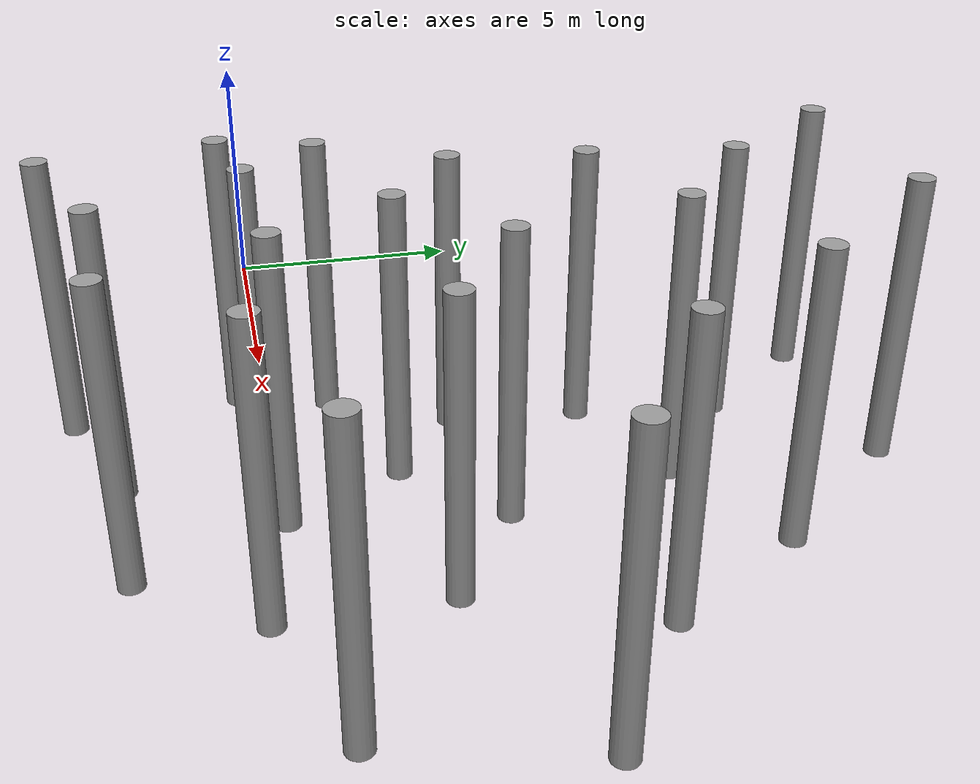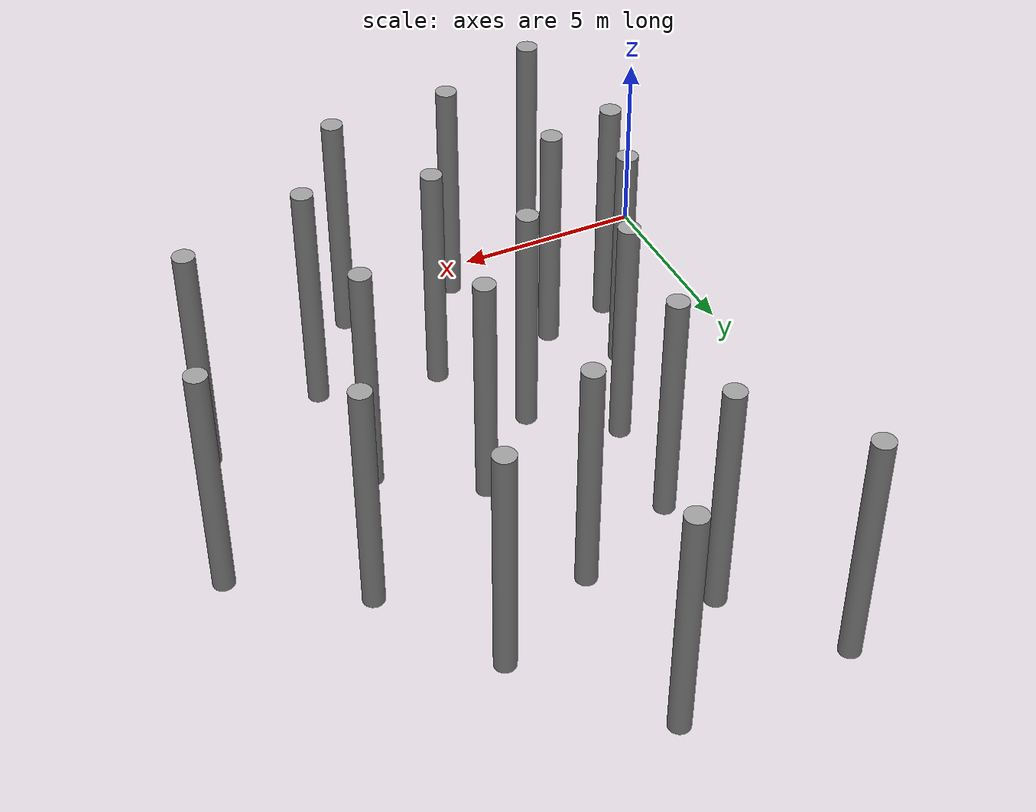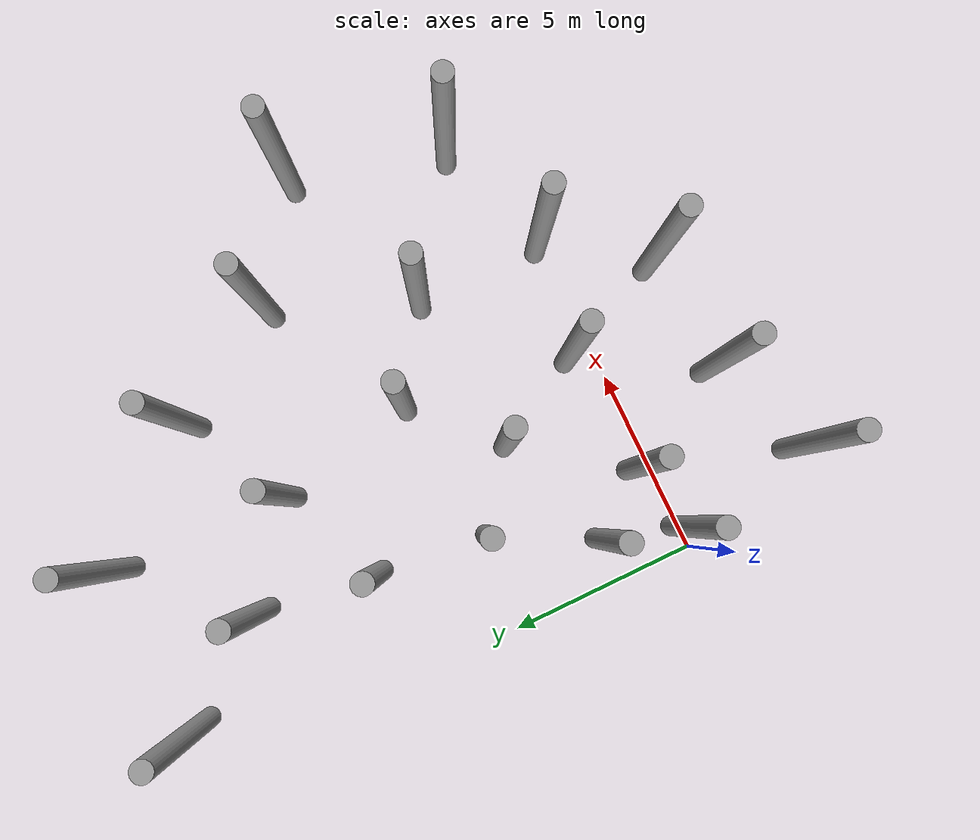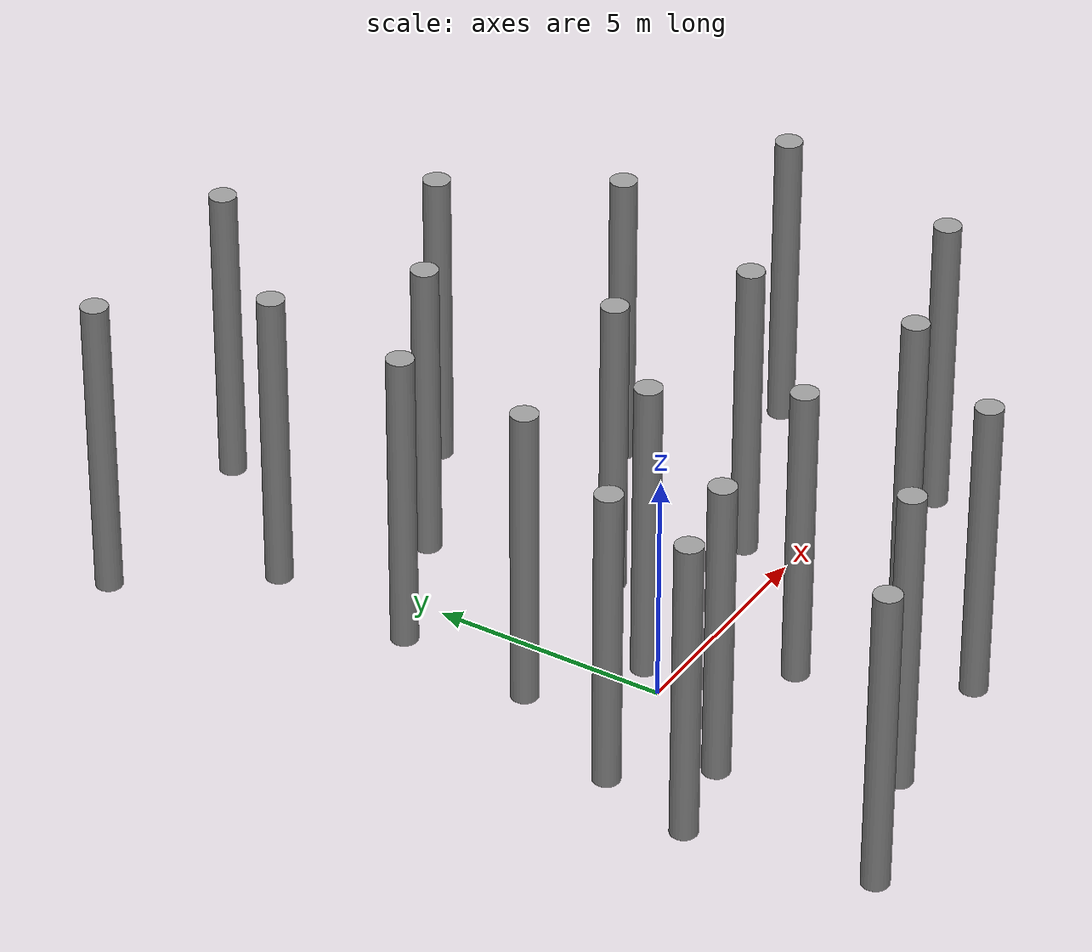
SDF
<sdf version="1.6">
 <model name="skog2">
  <link name="link_0_clone_1">
   <inertial>
    <mass>1</mass>
    <inertia><ixx>0.145833</ixx><ixy>0</ixy><ixz>0</ixz><iyy>0.145833</iyy><iyz>0</iyz><izz>0.125</izz></inertia>
   </inertial>
   <pose>0.375089 -0.434583 0 0 -0 0</pose>
   <visual name="visual">
    <geometry><cylinder><radius>0.3</radius><length>7</length></cylinder></geometry>
    <material>
     <lighting>1</lighting>
     <script><uri>file://media/materials/scripts/gazebo.material</uri><name>Gazebo/Grey</name></script>
     <shader type="vertex"><normal_map>__default__</normal_map></shader>
     <ambient>0.3 0.3 0.3 1</ambient>
     <diffuse>0.7 0.7 0.7 1</diffuse>
     <specular>0.01 0.01 0.01 1</specular>
     <emissive>0 0 0 1</emissive>
    </material>
   </visual>
   <collision name="collision">
    <geometry><cylinder><radius>0.3</radius><length>7</length></cylinder></geometry>
    <surface>
     <friction>
      <ode><mu>1</mu><mu2>1</mu2><fdir1>0 0 0</fdir1><slip1>0</slip1><slip2>0</slip2></ode>
      <torsional>
       <coefficient>1</coefficient>
       <patch_radius>0</patch_radius>
       <surface_radius>0</surface_radius>
       <use_patch_radius>1</use_patch_radius>
       <ode><slip>0</slip></ode>
      </torsional>
     </friction>
     <bounce><restitution_coefficient>0</restitution_coefficient><threshold>1e+06</threshold></bounce>
     <contact>
      <collide_without_contact>0</collide_without_contact>
      <collide_without_contact_bitmask>1</collide_without_contact_bitmask>
      <collide_bitmask>1</collide_bitmask>
      <ode>
       <soft_cfm>0</soft_cfm>
       <soft_erp>0.2</soft_erp>
       <kp>1e+13</kp>
       <kd>1</kd>
       <max_vel>0.01</max_vel>
       <min_depth>0</min_depth>
      </ode>
      <bullet>
       <split_impulse>1</split_impulse>
       <split_impulse_penetration_threshold>-0.01</split_impulse_penetration_threshold>
       <soft_cfm>0</soft_cfm>
       <soft_erp>0.2</soft_erp>
       <kp>1e+13</kp>
       <kd>1</kd>
      </bullet>
     </contact>
    </surface>
   </collision>
  </link>
  <link name="link_0_clone_10">
   <inertial>
    <mass>1</mass>
    <inertia><ixx>0.145833</ixx><ixy>0</ixy><ixz>0</ixz><iyy>0.145833</iyy><iyz>0</iyz><izz>0.125</izz></inertia>
   </inertial>
   <pose>2.50519 4.65138 0 0 -0 0</pose>
   <visual name="visual">
    <geometry><cylinder><radius>0.3</radius><length>7</length></cylinder></geometry>
    <material>
     <lighting>1</lighting>
     <script><uri>file://media/materials/scripts/gazebo.material</uri><name>Gazebo/Grey</name></script>
     <shader type="vertex"><normal_map>__default__</normal_map></shader>
     <ambient>0.3 0.3 0.3 1</ambient>
     <diffuse>0.7 0.7 0.7 1</diffuse>
     <specular>0.01 0.01 0.01 1</specular>
     <emissive>0 0 0 1</emissive>
    </material>
   </visual>
   <collision name="collision">
    <geometry><cylinder><radius>0.3</radius><length>7</length></cylinder></geometry>
    <surface>
     <friction>
      <ode><mu>1</mu><mu2>1</mu2><fdir1>0 0 0</fdir1><slip1>0</slip1><slip2>0</slip2></ode>
      <torsional>
       <coefficient>1</coefficient>
       <patch_radius>0</patch_radius>
       <surface_radius>0</surface_radius>
       <use_patch_radius>1</use_patch_radius>
       <ode><slip>0</slip></ode>
      </torsional>
     </friction>
     <bounce><restitution_coefficient>0</restitution_coefficient><threshold>1e+06</threshold></bounce>
     <contact>
      <collide_without_contact>0</collide_without_contact>
      <collide_without_contact_bitmask>1</collide_without_contact_bitmask>
      <collide_bitmask>1</collide_bitmask>
      <ode>
       <soft_cfm>0</soft_cfm>
       <soft_erp>0.2</soft_erp>
       <kp>1e+13</kp>
       <kd>1</kd>
       <max_vel>0.01</max_vel>
       <min_depth>0</min_depth>
      </ode>
      <bullet>
       <split_impulse>1</split_impulse>
       <split_impulse_penetration_threshold>-0.01</split_impulse_penetration_threshold>
       <soft_cfm>0</soft_cfm>
       <soft_erp>0.2</soft_erp>
       <kp>1e+13</kp>
       <kd>1</kd>
      </bullet>
     </contact>
    </surface>
   </collision>
  </link>
  <link name="link_0_clone_11">
   <inertial>
    <mass>1</mass>
    <inertia><ixx>0.145833</ixx><ixy>0</ixy><ixz>0</ixz><iyy>0.145833</iyy><iyz>0</iyz><izz>0.125</izz></inertia>
   </inertial>
   <pose>2.42666 0.027375 0 0 -0 0</pose>
   <visual name="visual">
    <geometry><cylinder><radius>0.3</radius><length>7</length></cylinder></geometry>
    <material>
     <lighting>1</lighting>
     <script><uri>file://media/materials/scripts/gazebo.material</uri><name>Gazebo/Grey</name></script>
     <shader type="vertex"><normal_map>__default__</normal_map></shader>
     <ambient>0.3 0.3 0.3 1</ambient>
     <diffuse>0.7 0.7 0.7 1</diffuse>
     <specular>0.01 0.01 0.01 1</specular>
     <emissive>0 0 0 1</emissive>
    </material>
   </visual>
   <collision name="collision">
    <geometry><cylinder><radius>0.3</radius><length>7</length></cylinder></geometry>
    <surface>
     <friction>
      <ode><mu>1</mu><mu2>1</mu2><fdir1>0 0 0</fdir1><slip1>0</slip1><slip2>0</slip2></ode>
      <torsional>
       <coefficient>1</coefficient>
       <patch_radius>0</patch_radius>
       <surface_radius>0</surface_radius>
       <use_patch_radius>1</use_patch_radius>
       <ode><slip>0</slip></ode>
      </torsional>
     </friction>
     <bounce><restitution_coefficient>0</restitution_coefficient><threshold>1e+06</threshold></bounce>
     <contact>
      <collide_without_contact>0</collide_without_contact>
      <collide_without_contact_bitmask>1</collide_without_contact_bitmask>
      <collide_bitmask>1</collide_bitmask>
      <ode>
       <soft_cfm>0</soft_cfm>
       <soft_erp>0.2</soft_erp>
       <kp>1e+13</kp>
       <kd>1</kd>
       <max_vel>0.01</max_vel>
       <min_depth>0</min_depth>
      </ode>
      <bullet>
       <split_impulse>1</split_impulse>
       <split_impulse_penetration_threshold>-0.01</split_impulse_penetration_threshold>
       <soft_cfm>0</soft_cfm>
       <soft_erp>0.2</soft_erp>
       <kp>1e+13</kp>
       <kd>1</kd>
      </bullet>
     </contact>
    </surface>
   </collision>
  </link>
  <link name="link_0_clone_13">
   <inertial>
    <mass>1</mass>
    <inertia><ixx>0.145833</ixx><ixy>0</ixy><ixz>0</ixz><iyy>0.145833</iyy><iyz>0</iyz><izz>0.125</izz></inertia>
   </inertial>
   <pose>1.00037 -4.4509 0 0 -0 0</pose>
   <visual name="visual">
    <geometry><cylinder><radius>0.3</radius><length>7</length></cylinder></geometry>
    <material>
     <lighting>1</lighting>
     <script><uri>file://media/materials/scripts/gazebo.material</uri><name>Gazebo/Grey</name></script>
     <shader type="vertex"><normal_map>__default__</normal_map></shader>
     <ambient>0.3 0.3 0.3 1</ambient>
     <diffuse>0.7 0.7 0.7 1</diffuse>
     <specular>0.01 0.01 0.01 1</specular>
     <emissive>0 0 0 1</emissive>
    </material>
   </visual>
   <collision name="collision">
    <geometry><cylinder><radius>0.3</radius><length>7</length></cylinder></geometry>
    <surface>
     <friction>
      <ode><mu>1</mu><mu2>1</mu2><fdir1>0 0 0</fdir1><slip1>0</slip1><slip2>0</slip2></ode>
      <torsional>
       <coefficient>1</coefficient>
       <patch_radius>0</patch_radius>
       <surface_radius>0</surface_radius>
       <use_patch_radius>1</use_patch_radius>
       <ode><slip>0</slip></ode>
      </torsional>
     </friction>
     <bounce><restitution_coefficient>0</restitution_coefficient><threshold>1e+06</threshold></bounce>
     <contact>
      <collide_without_contact>0</collide_without_contact>
      <collide_without_contact_bitmask>1</collide_without_contact_bitmask>
      <collide_bitmask>1</collide_bitmask>
      <ode>
       <soft_cfm>0</soft_cfm>
       <soft_erp>0.2</soft_erp>
       <kp>1e+13</kp>
       <kd>1</kd>
       <max_vel>0.01</max_vel>
       <min_depth>0</min_depth>
      </ode>
      <bullet>
       <split_impulse>1</split_impulse>
       <split_impulse_penetration_threshold>-0.01</split_impulse_penetration_threshold>
       <soft_cfm>0</soft_cfm>
       <soft_erp>0.2</soft_erp>
       <kp>1e+13</kp>
       <kd>1</kd>
      </bullet>
     </contact>
    </surface>
   </collision>
  </link>
  <link name="link_0_clone_14">
   <inertial>
    <mass>1</mass>
    <inertia><ixx>0.145833</ixx><ixy>0</ixy><ixz>0</ixz><iyy>0.145833</iyy><iyz>0</iyz><izz>0.125</izz></inertia>
   </inertial>
   <pose>4.10784 -3.25885 0 0 -0 0</pose>
   <visual name="visual">
    <geometry><cylinder><radius>0.3</radius><length>7</length></cylinder></geometry>
    <material>
     <lighting>1</lighting>
     <script><uri>file://media/materials/scripts/gazebo.material</uri><name>Gazebo/Grey</name></script>
     <shader type="vertex"><normal_map>__default__</normal_map></shader>
     <ambient>0.3 0.3 0.3 1</ambient>
     <diffuse>0.7 0.7 0.7 1</diffuse>
     <specular>0.01 0.01 0.01 1</specular>
     <emissive>0 0 0 1</emissive>
    </material>
   </visual>
   <collision name="collision">
    <geometry><cylinder><radius>0.3</radius><length>7</length></cylinder></geometry>
    <surface>
     <friction>
      <ode><mu>1</mu><mu2>1</mu2><fdir1>0 0 0</fdir1><slip1>0</slip1><slip2>0</slip2></ode>
      <torsional>
       <coefficient>1</coefficient>
       <patch_radius>0</patch_radius>
       <surface_radius>0</surface_radius>
       <use_patch_radius>1</use_patch_radius>
       <ode><slip>0</slip></ode>
      </torsional>
     </friction>
     <bounce><restitution_coefficient>0</restitution_coefficient><threshold>1e+06</threshold></bounce>
     <contact>
      <collide_without_contact>0</collide_without_contact>
      <collide_without_contact_bitmask>1</collide_without_contact_bitmask>
      <collide_bitmask>1</collide_bitmask>
      <ode>
       <soft_cfm>0</soft_cfm>
       <soft_erp>0.2</soft_erp>
       <kp>1e+13</kp>
       <kd>1</kd>
       <max_vel>0.01</max_vel>
       <min_depth>0</min_depth>
      </ode>
      <bullet>
       <split_impulse>1</split_impulse>
       <split_impulse_penetration_threshold>-0.01</split_impulse_penetration_threshold>
       <soft_cfm>0</soft_cfm>
       <soft_erp>0.2</soft_erp>
       <kp>1e+13</kp>
       <kd>1</kd>
      </bullet>
     </contact>
    </surface>
   </collision>
  </link>
  <link name="link_0_clone_15">
   <inertial>
    <mass>1</mass>
    <inertia><ixx>0.145833</ixx><ixy>0</ixy><ixz>0</ixz><iyy>0.145833</iyy><iyz>0</iyz><izz>0.125</izz></inertia>
   </inertial>
   <pose>6.12409 0.304074 0 0 -0 0</pose>
   <visual name="visual">
    <geometry><cylinder><radius>0.3</radius><length>7</length></cylinder></geometry>
    <material>
     <lighting>1</lighting>
     <script><uri>file://media/materials/scripts/gazebo.material</uri><name>Gazebo/Grey</name></script>
     <shader type="vertex"><normal_map>__default__</normal_map></shader>
     <ambient>0.3 0.3 0.3 1</ambient>
     <diffuse>0.7 0.7 0.7 1</diffuse>
     <specular>0.01 0.01 0.01 1</specular>
     <emissive>0 0 0 1</emissive>
    </material>
   </visual>
   <collision name="collision">
    <geometry><cylinder><radius>0.3</radius><length>7</length></cylinder></geometry>
    <surface>
     <friction>
      <ode><mu>1</mu><mu2>1</mu2><fdir1>0 0 0</fdir1><slip1>0</slip1><slip2>0</slip2></ode>
      <torsional>
       <coefficient>1</coefficient>
       <patch_radius>0</patch_radius>
       <surface_radius>0</surface_radius>
       <use_patch_radius>1</use_patch_radius>
       <ode><slip>0</slip></ode>
      </torsional>
     </friction>
     <bounce><restitution_coefficient>0</restitution_coefficient><threshold>1e+06</threshold></bounce>
     <contact>
      <collide_without_contact>0</collide_without_contact>
      <collide_without_contact_bitmask>1</collide_without_contact_bitmask>
      <collide_bitmask>1</collide_bitmask>
      <ode>
       <soft_cfm>0</soft_cfm>
       <soft_erp>0.2</soft_erp>
       <kp>1e+13</kp>
       <kd>1</kd>
       <max_vel>0.01</max_vel>
       <min_depth>0</min_depth>
      </ode>
      <bullet>
       <split_impulse>1</split_impulse>
       <split_impulse_penetration_threshold>-0.01</split_impulse_penetration_threshold>
       <soft_cfm>0</soft_cfm>
       <soft_erp>0.2</soft_erp>
       <kp>1e+13</kp>
       <kd>1</kd>
      </bullet>
     </contact>
    </surface>
   </collision>
  </link>
  <link name="link_0_clone_16">
   <inertial>
    <mass>1</mass>
    <inertia><ixx>0.145833</ixx><ixy>0</ixy><ixz>0</ixz><iyy>0.145833</iyy><iyz>0</iyz><izz>0.125</izz></inertia>
   </inertial>
   <pose>6.83354 5.18672 0 0 -0 0</pose>
   <visual name="visual">
    <geometry><cylinder><radius>0.3</radius><length>7</length></cylinder></geometry>
    <material>
     <lighting>1</lighting>
     <script><uri>file://media/materials/scripts/gazebo.material</uri><name>Gazebo/Grey</name></script>
     <shader type="vertex"><normal_map>__default__</normal_map></shader>
     <ambient>0.3 0.3 0.3 1</ambient>
     <diffuse>0.7 0.7 0.7 1</diffuse>
     <specular>0.01 0.01 0.01 1</specular>
     <emissive>0 0 0 1</emissive>
    </material>
   </visual>
   <collision name="collision">
    <geometry><cylinder><radius>0.3</radius><length>7</length></cylinder></geometry>
    <surface>
     <friction>
      <ode><mu>1</mu><mu2>1</mu2><fdir1>0 0 0</fdir1><slip1>0</slip1><slip2>0</slip2></ode>
      <torsional>
       <coefficient>1</coefficient>
       <patch_radius>0</patch_radius>
       <surface_radius>0</surface_radius>
       <use_patch_radius>1</use_patch_radius>
       <ode><slip>0</slip></ode>
      </torsional>
     </friction>
     <bounce><restitution_coefficient>0</restitution_coefficient><threshold>1e+06</threshold></bounce>
     <contact>
      <collide_without_contact>0</collide_without_contact>
      <collide_without_contact_bitmask>1</collide_without_contact_bitmask>
      <collide_bitmask>1</collide_bitmask>
      <ode>
       <soft_cfm>0</soft_cfm>
       <soft_erp>0.2</soft_erp>
       <kp>1e+13</kp>
       <kd>1</kd>
       <max_vel>0.01</max_vel>
       <min_depth>0</min_depth>
      </ode>
      <bullet>
       <split_impulse>1</split_impulse>
       <split_impulse_penetration_threshold>-0.01</split_impulse_penetration_threshold>
       <soft_cfm>0</soft_cfm>
       <soft_erp>0.2</soft_erp>
       <kp>1e+13</kp>
       <kd>1</kd>
      </bullet>
     </contact>
    </surface>
   </collision>
  </link>
  <link name="link_0_clone_17">
   <inertial>
    <mass>1</mass>
    <inertia><ixx>0.145833</ixx><ixy>0</ixy><ixz>0</ixz><iyy>0.145833</iyy><iyz>0</iyz><izz>0.125</izz></inertia>
   </inertial>
   <pose>2.8537 7.8375 0 0 -0 0</pose>
   <visual name="visual">
    <geometry><cylinder><radius>0.3</radius><length>7</length></cylinder></geometry>
    <material>
     <lighting>1</lighting>
     <script><uri>file://media/materials/scripts/gazebo.material</uri><name>Gazebo/Grey</name></script>
     <shader type="vertex"><normal_map>__default__</normal_map></shader>
     <ambient>0.3 0.3 0.3 1</ambient>
     <diffuse>0.7 0.7 0.7 1</diffuse>
     <specular>0.01 0.01 0.01 1</specular>
     <emissive>0 0 0 1</emissive>
    </material>
   </visual>
   <collision name="collision">
    <geometry><cylinder><radius>0.3</radius><length>7</length></cylinder></geometry>
    <surface>
     <friction>
      <ode><mu>1</mu><mu2>1</mu2><fdir1>0 0 0</fdir1><slip1>0</slip1><slip2>0</slip2></ode>
      <torsional>
       <coefficient>1</coefficient>
       <patch_radius>0</patch_radius>
       <surface_radius>0</surface_radius>
       <use_patch_radius>1</use_patch_radius>
       <ode><slip>0</slip></ode>
      </torsional>
     </friction>
     <bounce><restitution_coefficient>0</restitution_coefficient><threshold>1e+06</threshold></bounce>
     <contact>
      <collide_without_contact>0</collide_without_contact>
      <collide_without_contact_bitmask>1</collide_without_contact_bitmask>
      <collide_bitmask>1</collide_bitmask>
      <ode>
       <soft_cfm>0</soft_cfm>
       <soft_erp>0.2</soft_erp>
       <kp>1e+13</kp>
       <kd>1</kd>
       <max_vel>0.01</max_vel>
       <min_depth>0</min_depth>
      </ode>
      <bullet>
       <split_impulse>1</split_impulse>
       <split_impulse_penetration_threshold>-0.01</split_impulse_penetration_threshold>
       <soft_cfm>0</soft_cfm>
       <soft_erp>0.2</soft_erp>
       <kp>1e+13</kp>
       <kd>1</kd>
      </bullet>
     </contact>
    </surface>
   </collision>
  </link>
  <link name="link_0_clone_2">
   <inertial>
    <mass>1</mass>
    <inertia><ixx>0.145833</ixx><ixy>0</ixy><ixz>0</ixz><iyy>0.145833</iyy><iyz>0</iyz><izz>0.125</izz></inertia>
   </inertial>
   <pose>1.0178 1.76909 0 0 -0 0</pose>
   <visual name="visual">
    <geometry><cylinder><radius>0.3</radius><length>7</length></cylinder></geometry>
    <material>
     <lighting>1</lighting>
     <script><uri>file://media/materials/scripts/gazebo.material</uri><name>Gazebo/Grey</name></script>
     <shader type="vertex"><normal_map>__default__</normal_map></shader>
     <ambient>0.3 0.3 0.3 1</ambient>
     <diffuse>0.7 0.7 0.7 1</diffuse>
     <specular>0.01 0.01 0.01 1</specular>
     <emissive>0 0 0 1</emissive>
    </material>
   </visual>
   <collision name="collision">
    <geometry><cylinder><radius>0.3</radius><length>7</length></cylinder></geometry>
    <surface>
     <friction>
      <ode><mu>1</mu><mu2>1</mu2><fdir1>0 0 0</fdir1><slip1>0</slip1><slip2>0</slip2></ode>
      <torsional>
       <coefficient>1</coefficient>
       <patch_radius>0</patch_radius>
       <surface_radius>0</surface_radius>
       <use_patch_radius>1</use_patch_radius>
       <ode><slip>0</slip></ode>
      </torsional>
     </friction>
     <bounce><restitution_coefficient>0</restitution_coefficient><threshold>1e+06</threshold></bounce>
     <contact>
      <collide_without_contact>0</collide_without_contact>
      <collide_without_contact_bitmask>1</collide_without_contact_bitmask>
      <collide_bitmask>1</collide_bitmask>
      <ode>
       <soft_cfm>0</soft_cfm>
       <soft_erp>0.2</soft_erp>
       <kp>1e+13</kp>
       <kd>1</kd>
       <max_vel>0.01</max_vel>
       <min_depth>0</min_depth>
      </ode>
      <bullet>
       <split_impulse>1</split_impulse>
       <split_impulse_penetration_threshold>-0.01</split_impulse_penetration_threshold>
       <soft_cfm>0</soft_cfm>
       <soft_erp>0.2</soft_erp>
       <kp>1e+13</kp>
       <kd>1</kd>
      </bullet>
     </contact>
    </surface>
   </collision>
  </link>
  <link name="link_0_clone_29">
   <inertial>
    <mass>1</mass>
    <inertia><ixx>0.145833</ixx><ixy>0</ixy><ixz>0</ixz><iyy>0.145833</iyy><iyz>0</iyz><izz>0.125</izz></inertia>
   </inertial>
   <pose>7.62972 -3.06744 0 0 -0 0</pose>
   <visual name="visual">
    <geometry><cylinder><radius>0.3</radius><length>7</length></cylinder></geometry>
    <material>
     <lighting>1</lighting>
     <script><uri>file://media/materials/scripts/gazebo.material</uri><name>Gazebo/Grey</name></script>
     <shader type="vertex"><normal_map>__default__</normal_map></shader>
     <ambient>0.3 0.3 0.3 1</ambient>
     <diffuse>0.7 0.7 0.7 1</diffuse>
     <specular>0.01 0.01 0.01 1</specular>
     <emissive>0 0 0 1</emissive>
    </material>
   </visual>
   <collision name="collision">
    <geometry><cylinder><radius>0.3</radius><length>7</length></cylinder></geometry>
    <surface>
     <friction>
      <ode><mu>1</mu><mu2>1</mu2><fdir1>0 0 0</fdir1><slip1>0</slip1><slip2>0</slip2></ode>
      <torsional>
       <coefficient>1</coefficient>
       <patch_radius>0</patch_radius>
       <surface_radius>0</surface_radius>
       <use_patch_radius>1</use_patch_radius>
       <ode><slip>0</slip></ode>
      </torsional>
     </friction>
     <bounce><restitution_coefficient>0</restitution_coefficient><threshold>1e+06</threshold></bounce>
     <contact>
      <collide_without_contact>0</collide_without_contact>
      <collide_without_contact_bitmask>1</collide_without_contact_bitmask>
      <collide_bitmask>1</collide_bitmask>
      <ode>
       <soft_cfm>0</soft_cfm>
       <soft_erp>0.2</soft_erp>
       <kp>1e+13</kp>
       <kd>1</kd>
       <max_vel>0.01</max_vel>
       <min_depth>0</min_depth>
      </ode>
      <bullet>
       <split_impulse>1</split_impulse>
       <split_impulse_penetration_threshold>-0.01</split_impulse_penetration_threshold>
       <soft_cfm>0</soft_cfm>
       <soft_erp>0.2</soft_erp>
       <kp>1e+13</kp>
       <kd>1</kd>
      </bullet>
     </contact>
    </surface>
   </collision>
  </link>
  <link name="link_0_clone_31">
   <inertial>
    <mass>1</mass>
    <inertia><ixx>0.145833</ixx><ixy>0</ixy><ixz>0</ixz><iyy>0.145833</iyy><iyz>0</iyz><izz>0.125</izz></inertia>
   </inertial>
   <pose>9.53582 -0.345348 0 0 -0 0</pose>
   <visual name="visual">
    <geometry><cylinder><radius>0.3</radius><length>7</length></cylinder></geometry>
    <material>
     <lighting>1</lighting>
     <script><uri>file://media/materials/scripts/gazebo.material</uri><name>Gazebo/Grey</name></script>
     <shader type="vertex"><normal_map>__default__</normal_map></shader>
     <ambient>0.3 0.3 0.3 1</ambient>
     <diffuse>0.7 0.7 0.7 1</diffuse>
     <specular>0.01 0.01 0.01 1</specular>
     <emissive>0 0 0 1</emissive>
    </material>
   </visual>
   <collision name="collision">
    <geometry><cylinder><radius>0.3</radius><length>7</length></cylinder></geometry>
    <surface>
     <friction>
      <ode><mu>1</mu><mu2>1</mu2><fdir1>0 0 0</fdir1><slip1>0</slip1><slip2>0</slip2></ode>
      <torsional>
       <coefficient>1</coefficient>
       <patch_radius>0</patch_radius>
       <surface_radius>0</surface_radius>
       <use_patch_radius>1</use_patch_radius>
       <ode><slip>0</slip></ode>
      </torsional>
     </friction>
     <bounce><restitution_coefficient>0</restitution_coefficient><threshold>1e+06</threshold></bounce>
     <contact>
      <collide_without_contact>0</collide_without_contact>
      <collide_without_contact_bitmask>1</collide_without_contact_bitmask>
      <collide_bitmask>1</collide_bitmask>
      <ode>
       <soft_cfm>0</soft_cfm>
       <soft_erp>0.2</soft_erp>
       <kp>1e+13</kp>
       <kd>1</kd>
       <max_vel>0.01</max_vel>
       <min_depth>0</min_depth>
      </ode>
      <bullet>
       <split_impulse>1</split_impulse>
       <split_impulse_penetration_threshold>-0.01</split_impulse_penetration_threshold>
       <soft_cfm>0</soft_cfm>
       <soft_erp>0.2</soft_erp>
       <kp>1e+13</kp>
       <kd>1</kd>
      </bullet>
     </contact>
    </surface>
   </collision>
  </link>
  <link name="link_0_clone_32">
   <inertial>
    <mass>1</mass>
    <inertia><ixx>0.145833</ixx><ixy>0</ixy><ixz>0</ixz><iyy>0.145833</iyy><iyz>0</iyz><izz>0.125</izz></inertia>
   </inertial>
   <pose>9.45164 3.49125 0 0 -0 0</pose>
   <visual name="visual">
    <geometry><cylinder><radius>0.3</radius><length>7</length></cylinder></geometry>
    <material>
     <lighting>1</lighting>
     <script><uri>file://media/materials/scripts/gazebo.material</uri><name>Gazebo/Grey</name></script>
     <shader type="vertex"><normal_map>__default__</normal_map></shader>
     <ambient>0.3 0.3 0.3 1</ambient>
     <diffuse>0.7 0.7 0.7 1</diffuse>
     <specular>0.01 0.01 0.01 1</specular>
     <emissive>0 0 0 1</emissive>
    </material>
   </visual>
   <collision name="collision">
    <geometry><cylinder><radius>0.3</radius><length>7</length></cylinder></geometry>
    <surface>
     <friction>
      <ode><mu>1</mu><mu2>1</mu2><fdir1>0 0 0</fdir1><slip1>0</slip1><slip2>0</slip2></ode>
      <torsional>
       <coefficient>1</coefficient>
       <patch_radius>0</patch_radius>
       <surface_radius>0</surface_radius>
       <use_patch_radius>1</use_patch_radius>
       <ode><slip>0</slip></ode>
      </torsional>
     </friction>
     <bounce><restitution_coefficient>0</restitution_coefficient><threshold>1e+06</threshold></bounce>
     <contact>
      <collide_without_contact>0</collide_without_contact>
      <collide_without_contact_bitmask>1</collide_without_contact_bitmask>
      <collide_bitmask>1</collide_bitmask>
      <ode>
       <soft_cfm>0</soft_cfm>
       <soft_erp>0.2</soft_erp>
       <kp>1e+13</kp>
       <kd>1</kd>
       <max_vel>0.01</max_vel>
       <min_depth>0</min_depth>
      </ode>
      <bullet>
       <split_impulse>1</split_impulse>
       <split_impulse_penetration_threshold>-0.01</split_impulse_penetration_threshold>
       <soft_cfm>0</soft_cfm>
       <soft_erp>0.2</soft_erp>
       <kp>1e+13</kp>
       <kd>1</kd>
      </bullet>
     </contact>
    </surface>
   </collision>
  </link>
  <link name="link_0_clone_33">
   <inertial>
    <mass>1</mass>
    <inertia><ixx>0.145833</ixx><ixy>0</ixy><ixz>0</ixz><iyy>0.145833</iyy><iyz>0</iyz><izz>0.125</izz></inertia>
   </inertial>
   <pose>4.61473 3.04459 0 0 -0 0</pose>
   <visual name="visual">
    <geometry><cylinder><radius>0.3</radius><length>7</length></cylinder></geometry>
    <material>
     <lighting>1</lighting>
     <script><uri>file://media/materials/scripts/gazebo.material</uri><name>Gazebo/Grey</name></script>
     <shader type="vertex"><normal_map>__default__</normal_map></shader>
     <ambient>0.3 0.3 0.3 1</ambient>
     <diffuse>0.7 0.7 0.7 1</diffuse>
     <specular>0.01 0.01 0.01 1</specular>
     <emissive>0 0 0 1</emissive>
    </material>
   </visual>
   <collision name="collision">
    <geometry><cylinder><radius>0.3</radius><length>7</length></cylinder></geometry>
    <surface>
     <friction>
      <ode><mu>1</mu><mu2>1</mu2><fdir1>0 0 0</fdir1><slip1>0</slip1><slip2>0</slip2></ode>
      <torsional>
       <coefficient>1</coefficient>
       <patch_radius>0</patch_radius>
       <surface_radius>0</surface_radius>
       <use_patch_radius>1</use_patch_radius>
       <ode><slip>0</slip></ode>
      </torsional>
     </friction>
     <bounce><restitution_coefficient>0</restitution_coefficient><threshold>1e+06</threshold></bounce>
     <contact>
      <collide_without_contact>0</collide_without_contact>
      <collide_without_contact_bitmask>1</collide_without_contact_bitmask>
      <collide_bitmask>1</collide_bitmask>
      <ode>
       <soft_cfm>0</soft_cfm>
       <soft_erp>0.2</soft_erp>
       <kp>1e+13</kp>
       <kd>1</kd>
       <max_vel>0.01</max_vel>
       <min_depth>0</min_depth>
      </ode>
      <bullet>
       <split_impulse>1</split_impulse>
       <split_impulse_penetration_threshold>-0.01</split_impulse_penetration_threshold>
       <soft_cfm>0</soft_cfm>
       <soft_erp>0.2</soft_erp>
       <kp>1e+13</kp>
       <kd>1</kd>
      </bullet>
     </contact>
    </surface>
   </collision>
  </link>
  <link name="link_0_clone_34">
   <inertial>
    <mass>1</mass>
    <inertia><ixx>0.145833</ixx><ixy>0</ixy><ixz>0</ixz><iyy>0.145833</iyy><iyz>0</iyz><izz>0.125</izz></inertia>
   </inertial>
   <pose>5.90973 9.2389 0 0 -0 0</pose>
   <visual name="visual">
    <geometry><cylinder><radius>0.3</radius><length>7</length></cylinder></geometry>
    <material>
     <lighting>1</lighting>
     <script><uri>file://media/materials/scripts/gazebo.material</uri><name>Gazebo/Grey</name></script>
     <shader type="vertex"><normal_map>__default__</normal_map></shader>
     <ambient>0.3 0.3 0.3 1</ambient>
     <diffuse>0.7 0.7 0.7 1</diffuse>
     <specular>0.01 0.01 0.01 1</specular>
     <emissive>0 0 0 1</emissive>
    </material>
   </visual>
   <collision name="collision">
    <geometry><cylinder><radius>0.3</radius><length>7</length></cylinder></geometry>
    <surface>
     <friction>
      <ode><mu>1</mu><mu2>1</mu2><fdir1>0 0 0</fdir1><slip1>0</slip1><slip2>0</slip2></ode>
      <torsional>
       <coefficient>1</coefficient>
       <patch_radius>0</patch_radius>
       <surface_radius>0</surface_radius>
       <use_patch_radius>1</use_patch_radius>
       <ode><slip>0</slip></ode>
      </torsional>
     </friction>
     <bounce><restitution_coefficient>0</restitution_coefficient><threshold>1e+06</threshold></bounce>
     <contact>
      <collide_without_contact>0</collide_without_contact>
      <collide_without_contact_bitmask>1</collide_without_contact_bitmask>
      <collide_bitmask>1</collide_bitmask>
      <ode>
       <soft_cfm>0</soft_cfm>
       <soft_erp>0.2</soft_erp>
       <kp>1e+13</kp>
       <kd>1</kd>
       <max_vel>0.01</max_vel>
       <min_depth>0</min_depth>
      </ode>
      <bullet>
       <split_impulse>1</split_impulse>
       <split_impulse_penetration_threshold>-0.01</split_impulse_penetration_threshold>
       <soft_cfm>0</soft_cfm>
       <soft_erp>0.2</soft_erp>
       <kp>1e+13</kp>
       <kd>1</kd>
      </bullet>
     </contact>
    </surface>
   </collision>
  </link>
  <link name="link_0_clone_35">
   <inertial>
    <mass>1</mass>
    <inertia><ixx>0.145833</ixx><ixy>0</ixy><ixz>0</ixz><iyy>0.145833</iyy><iyz>0</iyz><izz>0.125</izz></inertia>
   </inertial>
   <pose>11.1027 7.58092 0 0 -0 0</pose>
   <visual name="visual">
    <geometry><cylinder><radius>0.3</radius><length>7</length></cylinder></geometry>
    <material>
     <lighting>1</lighting>
     <script><uri>file://media/materials/scripts/gazebo.material</uri><name>Gazebo/Grey</name></script>
     <shader type="vertex"><normal_map>__default__</normal_map></shader>
     <ambient>0.3 0.3 0.3 1</ambient>
     <diffuse>0.7 0.7 0.7 1</diffuse>
     <specular>0.01 0.01 0.01 1</specular>
     <emissive>0 0 0 1</emissive>
    </material>
   </visual>
   <collision name="collision">
    <geometry><cylinder><radius>0.3</radius><length>7</length></cylinder></geometry>
    <surface>
     <friction>
      <ode><mu>1</mu><mu2>1</mu2><fdir1>0 0 0</fdir1><slip1>0</slip1><slip2>0</slip2></ode>
      <torsional>
       <coefficient>1</coefficient>
       <patch_radius>0</patch_radius>
       <surface_radius>0</surface_radius>
       <use_patch_radius>1</use_patch_radius>
       <ode><slip>0</slip></ode>
      </torsional>
     </friction>
     <bounce><restitution_coefficient>0</restitution_coefficient><threshold>1e+06</threshold></bounce>
     <contact>
      <collide_without_contact>0</collide_without_contact>
      <collide_without_contact_bitmask>1</collide_without_contact_bitmask>
      <collide_bitmask>1</collide_bitmask>
      <ode>
       <soft_cfm>0</soft_cfm>
       <soft_erp>0.2</soft_erp>
       <kp>1e+13</kp>
       <kd>1</kd>
       <max_vel>0.01</max_vel>
       <min_depth>0</min_depth>
      </ode>
      <bullet>
       <split_impulse>1</split_impulse>
       <split_impulse_penetration_threshold>-0.01</split_impulse_penetration_threshold>
       <soft_cfm>0</soft_cfm>
       <soft_erp>0.2</soft_erp>
       <kp>1e+13</kp>
       <kd>1</kd>
      </bullet>
     </contact>
    </surface>
   </collision>
  </link>
  <link name="link_0_clone_36">
   <inertial>
    <mass>1</mass>
    <inertia><ixx>0.145833</ixx><ixy>0</ixy><ixz>0</ixz><iyy>0.145833</iyy><iyz>0</iyz><izz>0.125</izz></inertia>
   </inertial>
   <pose>9.01871 10.9552 0 0 -0 0</pose>
   <visual name="visual">
    <geometry><cylinder><radius>0.3</radius><length>7</length></cylinder></geometry>
    <material>
     <lighting>1</lighting>
     <script><uri>file://media/materials/scripts/gazebo.material</uri><name>Gazebo/Grey</name></script>
     <shader type="vertex"><normal_map>__default__</normal_map></shader>
     <ambient>0.3 0.3 0.3 1</ambient>
     <diffuse>0.7 0.7 0.7 1</diffuse>
     <specular>0.01 0.01 0.01 1</specular>
     <emissive>0 0 0 1</emissive>
    </material>
   </visual>
   <collision name="collision">
    <geometry><cylinder><radius>0.3</radius><length>7</length></cylinder></geometry>
    <surface>
     <friction>
      <ode><mu>1</mu><mu2>1</mu2><fdir1>0 0 0</fdir1><slip1>0</slip1><slip2>0</slip2></ode>
      <torsional>
       <coefficient>1</coefficient>
       <patch_radius>0</patch_radius>
       <surface_radius>0</surface_radius>
       <use_patch_radius>1</use_patch_radius>
       <ode><slip>0</slip></ode>
      </torsional>
     </friction>
     <bounce><restitution_coefficient>0</restitution_coefficient><threshold>1e+06</threshold></bounce>
     <contact>
      <collide_without_contact>0</collide_without_contact>
      <collide_without_contact_bitmask>1</collide_without_contact_bitmask>
      <collide_bitmask>1</collide_bitmask>
      <ode>
       <soft_cfm>0</soft_cfm>
       <soft_erp>0.2</soft_erp>
       <kp>1e+13</kp>
       <kd>1</kd>
       <max_vel>0.01</max_vel>
       <min_depth>0</min_depth>
      </ode>
      <bullet>
       <split_impulse>1</split_impulse>
       <split_impulse_penetration_threshold>-0.01</split_impulse_penetration_threshold>
       <soft_cfm>0</soft_cfm>
       <soft_erp>0.2</soft_erp>
       <kp>1e+13</kp>
       <kd>1</kd>
      </bullet>
     </contact>
    </surface>
   </collision>
  </link>
  <link name="link_0_clone_37">
   <inertial>
    <mass>1</mass>
    <inertia><ixx>0.145833</ixx><ixy>0</ixy><ixz>0</ixz><iyy>0.145833</iyy><iyz>0</iyz><izz>0.125</izz></inertia>
   </inertial>
   <pose>1.1539 14.2056 0 0 -0 0</pose>
   <visual name="visual">
    <geometry><cylinder><radius>0.3</radius><length>7</length></cylinder></geometry>
    <material>
     <lighting>1</lighting>
     <script><uri>file://media/materials/scripts/gazebo.material</uri><name>Gazebo/Grey</name></script>
     <shader type="vertex"><normal_map>__default__</normal_map></shader>
     <ambient>0.3 0.3 0.3 1</ambient>
     <diffuse>0.7 0.7 0.7 1</diffuse>
     <specular>0.01 0.01 0.01 1</specular>
     <emissive>0 0 0 1</emissive>
    </material>
   </visual>
   <collision name="collision">
    <geometry><cylinder><radius>0.3</radius><length>7</length></cylinder></geometry>
    <surface>
     <friction>
      <ode><mu>1</mu><mu2>1</mu2><fdir1>0 0 0</fdir1><slip1>0</slip1><slip2>0</slip2></ode>
      <torsional>
       <coefficient>1</coefficient>
       <patch_radius>0</patch_radius>
       <surface_radius>0</surface_radius>
       <use_patch_radius>1</use_patch_radius>
       <ode><slip>0</slip></ode>
      </torsional>
     </friction>
     <bounce><restitution_coefficient>0</restitution_coefficient><threshold>1e+06</threshold></bounce>
     <contact>
      <collide_without_contact>0</collide_without_contact>
      <collide_without_contact_bitmask>1</collide_without_contact_bitmask>
      <collide_bitmask>1</collide_bitmask>
      <ode>
       <soft_cfm>0</soft_cfm>
       <soft_erp>0.2</soft_erp>
       <kp>1e+13</kp>
       <kd>1</kd>
       <max_vel>0.01</max_vel>
       <min_depth>0</min_depth>
      </ode>
      <bullet>
       <split_impulse>1</split_impulse>
       <split_impulse_penetration_threshold>-0.01</split_impulse_penetration_threshold>
       <soft_cfm>0</soft_cfm>
       <soft_erp>0.2</soft_erp>
       <kp>1e+13</kp>
       <kd>1</kd>
      </bullet>
     </contact>
    </surface>
   </collision>
  </link>
  <link name="link_0_clone_51">
   <inertial>
    <mass>1</mass>
    <inertia><ixx>0.145833</ixx><ixy>0</ixy><ixz>0</ixz><iyy>0.145833</iyy><iyz>0</iyz><izz>0.125</izz></inertia>
   </inertial>
   <pose>13.1681 0.896071 0 0 -0 0</pose>
   <visual name="visual">
    <geometry><cylinder><radius>0.3</radius><length>7</length></cylinder></geometry>
    <material>
     <lighting>1</lighting>
     <script><uri>file://media/materials/scripts/gazebo.material</uri><name>Gazebo/Grey</name></script>
     <shader type="vertex"><normal_map>__default__</normal_map></shader>
     <ambient>0.3 0.3 0.3 1</ambient>
     <diffuse>0.7 0.7 0.7 1</diffuse>
     <specular>0.01 0.01 0.01 1</specular>
     <emissive>0 0 0 1</emissive>
    </material>
   </visual>
   <collision name="collision">
    <geometry><cylinder><radius>0.3</radius><length>7</length></cylinder></geometry>
    <surface>
     <friction>
      <ode><mu>1</mu><mu2>1</mu2><fdir1>0 0 0</fdir1><slip1>0</slip1><slip2>0</slip2></ode>
      <torsional>
       <coefficient>1</coefficient>
       <patch_radius>0</patch_radius>
       <surface_radius>0</surface_radius>
       <use_patch_radius>1</use_patch_radius>
       <ode><slip>0</slip></ode>
      </torsional>
     </friction>
     <bounce><restitution_coefficient>0</restitution_coefficient><threshold>1e+06</threshold></bounce>
     <contact>
      <collide_without_contact>0</collide_without_contact>
      <collide_without_contact_bitmask>1</collide_without_contact_bitmask>
      <collide_bitmask>1</collide_bitmask>
      <ode>
       <soft_cfm>0</soft_cfm>
       <soft_erp>0.2</soft_erp>
       <kp>1e+13</kp>
       <kd>1</kd>
       <max_vel>0.01</max_vel>
       <min_depth>0</min_depth>
      </ode>
      <bullet>
       <split_impulse>1</split_impulse>
       <split_impulse_penetration_threshold>-0.01</split_impulse_penetration_threshold>
       <soft_cfm>0</soft_cfm>
       <soft_erp>0.2</soft_erp>
       <kp>1e+13</kp>
       <kd>1</kd>
      </bullet>
     </contact>
    </surface>
   </collision>
  </link>
  <link name="link_0_clone_52">
   <inertial>
    <mass>1</mass>
    <inertia><ixx>0.145833</ixx><ixy>0</ixy><ixz>0</ixz><iyy>0.145833</iyy><iyz>0</iyz><izz>0.125</izz></inertia>
   </inertial>
   <pose>14.3483 5.40825 0 0 -0 0</pose>
   <visual name="visual">
    <geometry><cylinder><radius>0.3</radius><length>7</length></cylinder></geometry>
    <material>
     <lighting>1</lighting>
     <script><uri>file://media/materials/scripts/gazebo.material</uri><name>Gazebo/Grey</name></script>
     <shader type="vertex"><normal_map>__default__</normal_map></shader>
     <ambient>0.3 0.3 0.3 1</ambient>
     <diffuse>0.7 0.7 0.7 1</diffuse>
     <specular>0.01 0.01 0.01 1</specular>
     <emissive>0 0 0 1</emissive>
    </material>
   </visual>
   <collision name="collision">
    <geometry><cylinder><radius>0.3</radius><length>7</length></cylinder></geometry>
    <surface>
     <friction>
      <ode><mu>1</mu><mu2>1</mu2><fdir1>0 0 0</fdir1><slip1>0</slip1><slip2>0</slip2></ode>
      <torsional>
       <coefficient>1</coefficient>
       <patch_radius>0</patch_radius>
       <surface_radius>0</surface_radius>
       <use_patch_radius>1</use_patch_radius>
       <ode><slip>0</slip></ode>
      </torsional>
     </friction>
     <bounce><restitution_coefficient>0</restitution_coefficient><threshold>1e+06</threshold></bounce>
     <contact>
      <collide_without_contact>0</collide_without_contact>
      <collide_without_contact_bitmask>1</collide_without_contact_bitmask>
      <collide_bitmask>1</collide_bitmask>
      <ode>
       <soft_cfm>0</soft_cfm>
       <soft_erp>0.2</soft_erp>
       <kp>1e+13</kp>
       <kd>1</kd>
       <max_vel>0.01</max_vel>
       <min_depth>0</min_depth>
      </ode>
      <bullet>
       <split_impulse>1</split_impulse>
       <split_impulse_penetration_threshold>-0.01</split_impulse_penetration_threshold>
       <soft_cfm>0</soft_cfm>
       <soft_erp>0.2</soft_erp>
       <kp>1e+13</kp>
       <kd>1</kd>
      </bullet>
     </contact>
    </surface>
   </collision>
  </link>
  <link name="link_0_clone_53">
   <inertial>
    <mass>1</mass>
    <inertia><ixx>0.145833</ixx><ixy>0</ixy><ixz>0</ixz><iyy>0.145833</iyy><iyz>0</iyz><izz>0.125</izz></inertia>
   </inertial>
   <pose>6.09508 14.4405 0 0 -0 0</pose>
   <visual name="visual">
    <geometry><cylinder><radius>0.3</radius><length>7</length></cylinder></geometry>
    <material>
     <lighting>1</lighting>
     <script><uri>file://media/materials/scripts/gazebo.material</uri><name>Gazebo/Grey</name></script>
     <shader type="vertex"><normal_map>__default__</normal_map></shader>
     <ambient>0.3 0.3 0.3 1</ambient>
     <diffuse>0.7 0.7 0.7 1</diffuse>
     <specular>0.01 0.01 0.01 1</specular>
     <emissive>0 0 0 1</emissive>
    </material>
   </visual>
   <collision name="collision">
    <geometry><cylinder><radius>0.3</radius><length>7</length></cylinder></geometry>
    <surface>
     <friction>
      <ode><mu>1</mu><mu2>1</mu2><fdir1>0 0 0</fdir1><slip1>0</slip1><slip2>0</slip2></ode>
      <torsional>
       <coefficient>1</coefficient>
       <patch_radius>0</patch_radius>
       <surface_radius>0</surface_radius>
       <use_patch_radius>1</use_patch_radius>
       <ode><slip>0</slip></ode>
      </torsional>
     </friction>
     <bounce><restitution_coefficient>0</restitution_coefficient><threshold>1e+06</threshold></bounce>
     <contact>
      <collide_without_contact>0</collide_without_contact>
      <collide_without_contact_bitmask>1</collide_without_contact_bitmask>
      <collide_bitmask>1</collide_bitmask>
      <ode>
       <soft_cfm>0</soft_cfm>
       <soft_erp>0.2</soft_erp>
       <kp>1e+13</kp>
       <kd>1</kd>
       <max_vel>0.01</max_vel>
       <min_depth>0</min_depth>
      </ode>
      <bullet>
       <split_impulse>1</split_impulse>
       <split_impulse_penetration_threshold>-0.01</split_impulse_penetration_threshold>
       <soft_cfm>0</soft_cfm>
       <soft_erp>0.2</soft_erp>
       <kp>1e+13</kp>
       <kd>1</kd>
      </bullet>
     </contact>
    </surface>
   </collision>
  </link>
  <link name="link_0_clone_60">
   <inertial>
    <mass>1</mass>
    <inertia><ixx>0.145833</ixx><ixy>0</ixy><ixz>0</ixz><iyy>0.145833</iyy><iyz>0</iyz><izz>0.125</izz></inertia>
   </inertial>
   <pose>3.29306 11.3036 0 0 -0 0</pose>
   <visual name="visual">
    <geometry><cylinder><radius>0.3</radius><length>7</length></cylinder></geometry>
    <material>
     <lighting>1</lighting>
     <script><uri>file://media/materials/scripts/gazebo.material</uri><name>Gazebo/Grey</name></script>
     <shader type="vertex"><normal_map>__default__</normal_map></shader>
     <ambient>0.3 0.3 0.3 1</ambient>
     <diffuse>0.7 0.7 0.7 1</diffuse>
     <specular>0.01 0.01 0.01 1</specular>
     <emissive>0 0 0 1</emissive>
    </material>
   </visual>
   <collision name="collision">
    <geometry><cylinder><radius>0.3</radius><length>7</length></cylinder></geometry>
    <surface>
     <friction>
      <ode><mu>1</mu><mu2>1</mu2><fdir1>0 0 0</fdir1><slip1>0</slip1><slip2>0</slip2></ode>
      <torsional>
       <coefficient>1</coefficient>
       <patch_radius>0</patch_radius>
       <surface_radius>0</surface_radius>
       <use_patch_radius>1</use_patch_radius>
       <ode><slip>0</slip></ode>
      </torsional>
     </friction>
     <bounce><restitution_coefficient>0</restitution_coefficient><threshold>1e+06</threshold></bounce>
     <contact>
      <collide_without_contact>0</collide_without_contact>
      <collide_without_contact_bitmask>1</collide_without_contact_bitmask>
      <collide_bitmask>1</collide_bitmask>
      <ode>
       <soft_cfm>0</soft_cfm>
       <soft_erp>0.2</soft_erp>
       <kp>1e+13</kp>
       <kd>1</kd>
       <max_vel>0.01</max_vel>
       <min_depth>0</min_depth>
      </ode>
      <bullet>
       <split_impulse>1</split_impulse>
       <split_impulse_penetration_threshold>-0.01</split_impulse_penetration_threshold>
       <soft_cfm>0</soft_cfm>
       <soft_erp>0.2</soft_erp>
       <kp>1e+13</kp>
       <kd>1</kd>
      </bullet>
     </contact>
    </surface>
   </collision>
  </link>
  <static>0</static>
 </model>
</sdf>
